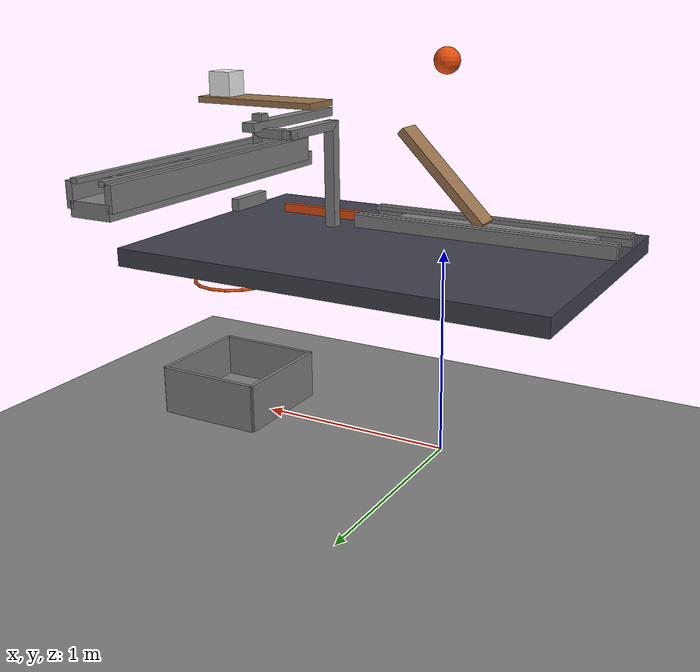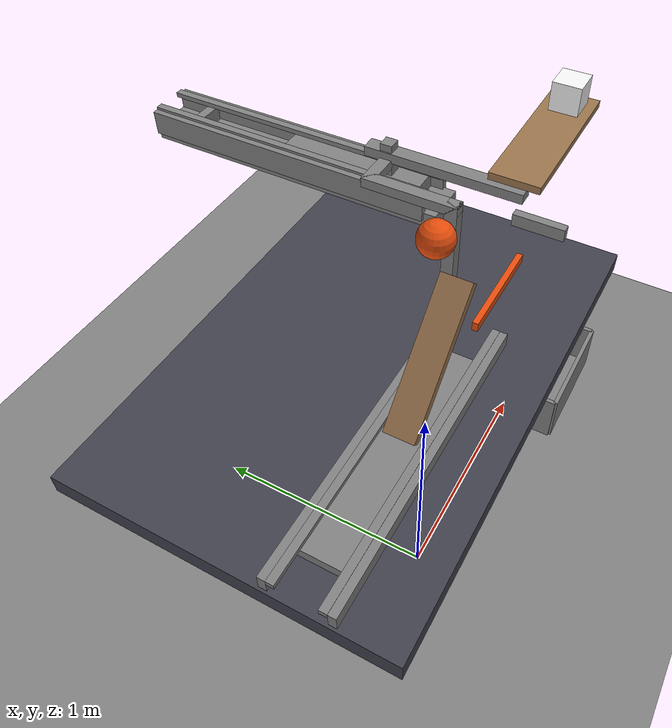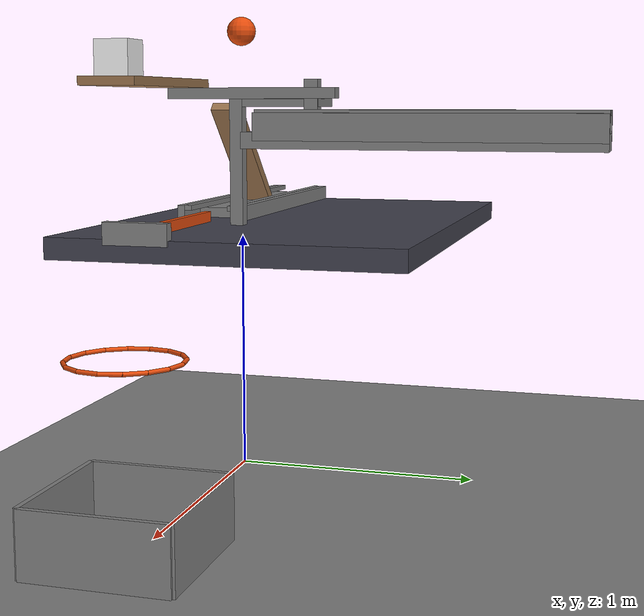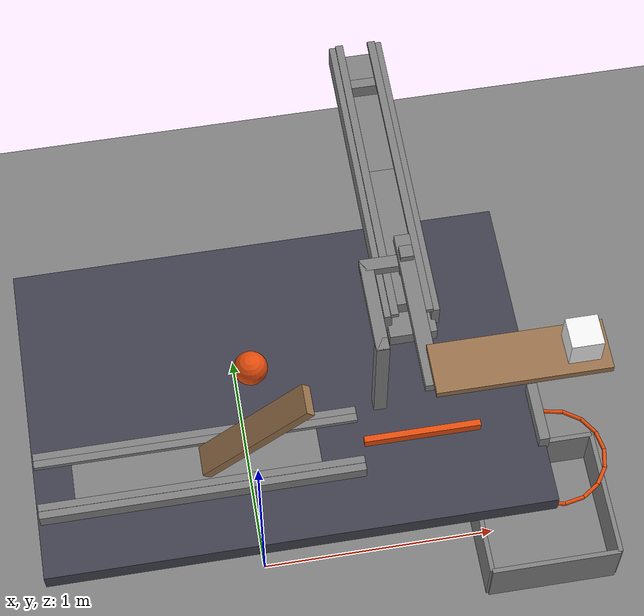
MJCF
<mujoco model="falling_ball_and_crossed_slides">
  <compiler angle="radian"/>
  <option timestep="0.002"/>
  <worldbody>
    <geom name="floor" type="plane" size="5 5 0.1" friction="0.8 0.005 0.002"/>
    <body name="box">
      <geom name="box_base" type="box" pos="1.2 0 0.015" size="0.275 0.275 0.015" friction="0.8 0.005 0.0001" solref="0.01 1"/>
      <geom name="box_near_wall" type="box" pos="0.925 0 0.125" size="0.01 0.275 0.125" friction="0.8 0.005 0.0001" solref="0.01 1"/>
      <geom name="box_far_wall" type="box" pos="1.475 0 0.125" size="0.01 0.275 0.125" friction="0.8 0.005 0.0001" solref="0.01 1"/>
      <geom name="box_left_wall" type="box" pos="1.2 0.275 0.125" size="0.275 0.01 0.125" friction="0.8 0.005 0.0001" solref="0.01 1"/>
      <geom name="box_right_wall" type="box" pos="1.2 -0.275 0.125" size="0.275 0.01 0.125" friction="0.8 0.005 0.0001" solref="0.01 1"/>
    </body>
    <body name="hoop">
      <geom name="hoop_00" type="capsule" size="0.008" fromto="1.408 0 0.7 1.39217 0.0795982 0.7" rgba="0.9 0.3 0.05 1"/>
      <geom name="hoop_01" type="capsule" size="0.008" fromto="1.39217 0.0795982 0.7 1.34708 0.147078 0.7" rgba="0.9 0.3 0.05 1"/>
      <geom name="hoop_02" type="capsule" size="0.008" fromto="1.34708 0.147078 0.7 1.2796 0.192167 0.7" rgba="0.9 0.3 0.05 1"/>
      <geom name="hoop_03" type="capsule" size="0.008" fromto="1.2796 0.192167 0.7 1.2 0.208 0.7" rgba="0.9 0.3 0.05 1"/>
      <geom name="hoop_04" type="capsule" size="0.008" fromto="1.2 0.208 0.7 1.1204 0.192167 0.7" rgba="0.9 0.3 0.05 1"/>
      <geom name="hoop_05" type="capsule" size="0.008" fromto="1.1204 0.192167 0.7 1.05292 0.147078 0.7" rgba="0.9 0.3 0.05 1"/>
      <geom name="hoop_06" type="capsule" size="0.008" fromto="1.05292 0.147078 0.7 1.00783 0.0795982 0.7" rgba="0.9 0.3 0.05 1"/>
      <geom name="hoop_07" type="capsule" size="0.008" fromto="1.00783 0.0795982 0.7 0.992 2.54727e-17 0.7" rgba="0.9 0.3 0.05 1"/>
      <geom name="hoop_08" type="capsule" size="0.008" fromto="0.992 2.54727e-17 0.7 1.00783 -0.0795982 0.7" rgba="0.9 0.3 0.05 1"/>
      <geom name="hoop_09" type="capsule" size="0.008" fromto="1.00783 -0.0795982 0.7 1.05292 -0.147078 0.7" rgba="0.9 0.3 0.05 1"/>
      <geom name="hoop_10" type="capsule" size="0.008" fromto="1.05292 -0.147078 0.7 1.1204 -0.192167 0.7" rgba="0.9 0.3 0.05 1"/>
      <geom name="hoop_11" type="capsule" size="0.008" fromto="1.1204 -0.192167 0.7 1.2 -0.208 0.7" rgba="0.9 0.3 0.05 1"/>
      <geom name="hoop_12" type="capsule" size="0.008" fromto="1.2 -0.208 0.7 1.2796 -0.192167 0.7" rgba="0.9 0.3 0.05 1"/>
      <geom name="hoop_13" type="capsule" size="0.008" fromto="1.2796 -0.192167 0.7 1.34708 -0.147078 0.7" rgba="0.9 0.3 0.05 1"/>
      <geom name="hoop_14" type="capsule" size="0.008" fromto="1.34708 -0.147078 0.7 1.39217 -0.0795982 0.7" rgba="0.9 0.3 0.05 1"/>
      <geom name="hoop_15" type="capsule" size="0.008" fromto="1.39217 -0.0795982 0.7 1.408 -5.09453e-17 0.7" rgba="0.9 0.3 0.05 1"/>
    </body>
    <body name="slide bed">
      <geom name="slide bed" type="box" pos="0.125 0.3 1.06" size="0.975 0.65 0.04" friction="0.005 0.005 0.0001" rgba="0.25 0.25 0.3 1"/>
    </body>
    <body name="first left rail">
      <geom name="first left rail" type="box" pos="-0.22 0.12 1.12" size="0.62 0.015 0.04" friction="0.005 0.005 0.0001"/>
    </body>
    <body name="first right rail">
      <geom name="first right rail" type="box" pos="-0.22 -0.12 1.12" size="0.62 0.015 0.04" friction="0.005 0.005 0.0001"/>
    </body>
    <body name="first left keeper">
      <geom name="first left keeper" type="box" pos="-0.22 0.09 1.151" size="0.62 0.015 0.01" friction="0.005 0.005 0.0001"/>
    </body>
    <body name="first right keeper">
      <geom name="first right keeper" type="box" pos="-0.22 -0.09 1.151" size="0.62 0.015 0.01" friction="0.005 0.005 0.0001"/>
    </body>
    <body name="first end stop">
      <geom name="first end stop" type="box" pos="1.09 0 1.12" size="0.02 0.12 0.04" solref="0.01 1"/>
    </body>
    <body name="slider1" pos="0 0 1.35">
      <freejoint/>
      <geom name="slider1" type="box" pos="0 0 0" size="0.282843 0.06 0.02" euler="0 -0.785398 0" mass="0.12" friction="0.005 0.005 0.0001" solref="0.01 1" rgba="0.6 0.45 0.3 1"/>
      <geom name="first carriage" type="box" pos="-0.23 0 -0.23" size="0.47 0.1 0.02" mass="0.06" friction="0.005 0.005 0.0001" solref="0.01 1"/>
    </body>
    <body name="second track">
      <geom name="second track" type="box" pos="0.64 0.9 1.43" size="0.09 0.65 0.03" friction="0.005 0.005 0.0001"/>
    </body>
    <body name="second near rail">
      <geom name="second near rail" type="box" pos="0.55 0.925 1.48" size="0.015 0.625 0.05" friction="0.005 0.005 0.0001"/>
    </body>
    <body name="second far rail">
      <geom name="second far rail" type="box" pos="0.73 0.925 1.48" size="0.015 0.625 0.05" friction="0.005 0.005 0.0001"/>
    </body>
    <body name="second near keeper">
      <geom name="second near keeper" type="box" pos="0.575 0.925 1.531" size="0.015 0.625 0.01" friction="0.005 0.005 0.0001"/>
    </body>
    <body name="second far keeper">
      <geom name="second far keeper" type="box" pos="0.705 0.925 1.531" size="0.015 0.625 0.01" friction="0.005 0.005 0.0001"/>
    </body>
    <body name="second end stop">
      <geom name="second end stop" type="box" pos="0.64 1.37 1.49" size="0.07 0.02 0.03" solref="0.01 1"/>
    </body>
    <body name="slider2" pos="0.64 0 1.12">
      <freejoint/>
      <geom name="slider2" type="box" pos="0 0 0" size="0.226274 0.0125 0.02" mass="0.08" friction="0.005 0.005 0.0001" solref="0.01 1" rgba="0.9 0.3 0.05 1"/>
      <geom name="second runner" type="box" pos="0 0.65 0.37" size="0.07 0.3 0.03" mass="0.08" friction="0.005 0.005 0.0001" solref="0.01 1"/>
      <geom name="cam upright" type="box" pos="-0.14 0.16 0.225" size="0.025 0.025 0.245" mass="0.025" friction="0.005 0.005 0.0001"/>
      <geom name="cam bridge" type="box" pos="-0.07 0.5 0.45" size="0.095 0.025 0.02" mass="0.02" friction="0.005 0.005 0.0001"/>
      <geom name="cam bridge link" type="box" pos="-0.14 0.33 0.45" size="0.025 0.195 0.02" mass="0.02" friction="0.005 0.005 0.0001"/>
      <geom name="support upright" type="box" pos="0.01 0.5 0.45" size="0.025 0.025 0.08" mass="0.02" friction="0.005 0.005 0.0001"/>
      <geom name="support spine" type="box" pos="0.01 0.27 0.48" size="0.03 0.32 0.02" mass="0.025" friction="0.005 0.005 0.0001"/>
      <geom name="withdrawable support" type="box" pos="0.335 0 0.515" size="0.325 0.1 0.015" mass="0.06" friction="0.001 0.005 0.0001" solref="0.01 1" rgba="0.6 0.45 0.3 1"/>
    </body>
    <body name="block" pos="1.2 0 1.71">
      <freejoint/>
      <geom name="block" type="box" pos="0 0 0" size="0.06 0.06 0.06" mass="0.3" friction="0.001 0.005 0.0001" solref="0.01 1" rgba="0.95 0.95 0.95 1"/>
    </body>
    <body name="ball" pos="0 0 1.86314">
      <freejoint/>
      <geom name="ball" type="sphere" pos="0 0 0" size="0.06" mass="2.5" condim="6" friction="0.005 0.005 0.0001" solref="0.01 1" rgba="0.9 0.3 0.05 1"/>
    </body>
  </worldbody>
  <keyframe>
    <key name="start" qpos="0 0 1.35 1 0 0 0 0.64 0 1.12 1 0 0 0 1.2 0 1.71 1 0 0 0 0 0 1.86314 1 0 0 0" qvel="0 0 0 0 0 0 0 0 0 0 0 0 0 0 0 0 0 0 0 0 0 0 0 0"/>
  </keyframe>
</mujoco>
